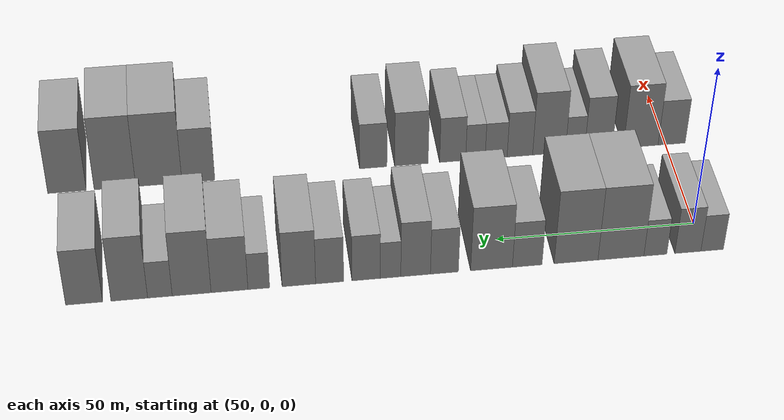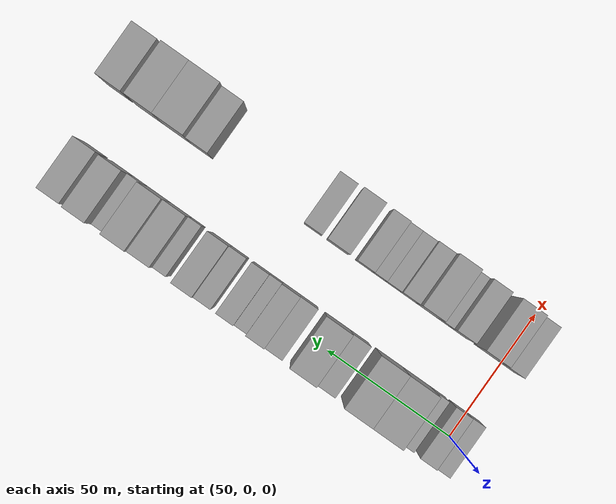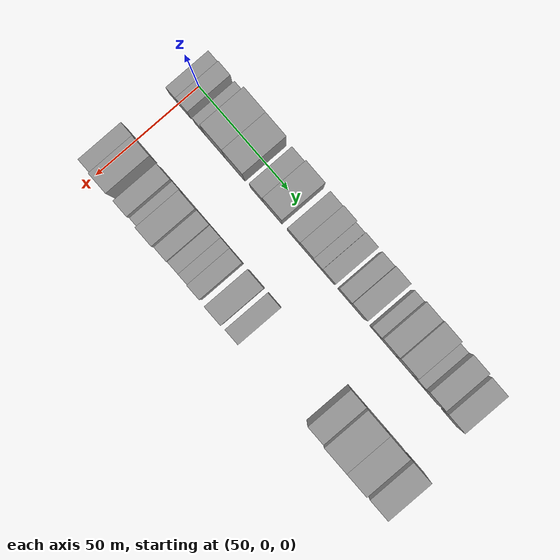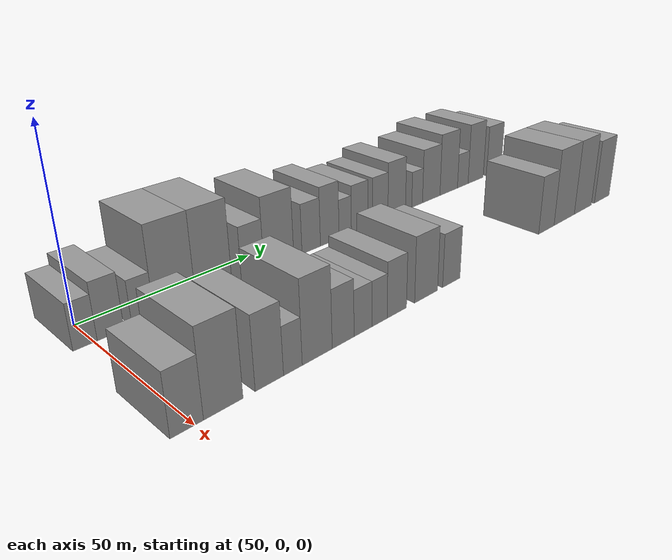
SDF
<sdf version="1.6">
 <world name="default">
  <model name="building_34">
   <static>1</static>
   <pose>50.0000 -2.1752 0 0.000000 0.000000 0.000000</pose>
   <link name="link">
    <pose>0 0 6.00 0 0 0</pose>
    <collision name="collision"><geometry><box><size>20.0000 5.7027 12.0000</size></box></geometry></collision>
    <visual name="visual">
     <cast_shadows>0</cast_shadows>
     <geometry><box><size>20.0000 5.7027 12.0000</size></box></geometry>
     <material>
      <script>
       <uri>model://grey_wall/materials/scripts</uri>
       <uri>model://grey_wall/materials/textures</uri>
       <name>vrc/grey_wall</name>
      </script>
     </material>
    </visual>
   </link>
  </model>
  <model name="building_35">
   <static>1</static>
   <pose>50.0000 3.9535 0 0.000000 0.000000 0.000000</pose>
   <link name="link">
    <pose>0 0 7.50 0 0 0</pose>
    <collision name="collision"><geometry><box><size>20.0000 6.5547 15.0000</size></box></geometry></collision>
    <visual name="visual">
     <cast_shadows>0</cast_shadows>
     <geometry><box><size>20.0000 6.5547 15.0000</size></box></geometry>
     <material>
      <script>
       <uri>model://grey_wall/materials/scripts</uri>
       <uri>model://grey_wall/materials/textures</uri>
       <name>vrc/grey_wall</name>
      </script>
     </material>
    </visual>
   </link>
  </model>
  <model name="building_36">
   <static>1</static>
   <pose>50.0000 12.1272 0 0.000000 0.000000 0.000000</pose>
   <link name="link">
    <pose>0 0 6.00 0 0 0</pose>
    <collision name="collision"><geometry><box><size>20.0000 5.7927 12.0000</size></box></geometry></collision>
    <visual name="visual">
     <cast_shadows>0</cast_shadows>
     <geometry><box><size>20.0000 5.7927 12.0000</size></box></geometry>
     <material>
      <script>
       <uri>model://grey_wall/materials/scripts</uri>
       <uri>model://grey_wall/materials/textures</uri>
       <name>vrc/grey_wall</name>
      </script>
     </material>
    </visual>
   </link>
  </model>
  <model name="building_37">
   <static>1</static>
   <pose>50.0000 20.7689 0 0.000000 0.000000 0.000000</pose>
   <link name="link">
    <pose>0 0 12.00 0 0 0</pose>
    <collision name="collision"><geometry><box><size>20.0000 11.4906 24.0000</size></box></geometry></collision>
    <visual name="visual">
     <cast_shadows>0</cast_shadows>
     <geometry><box><size>20.0000 11.4906 24.0000</size></box></geometry>
     <material>
      <script>
       <uri>model://grey_wall/materials/scripts</uri>
       <uri>model://grey_wall/materials/textures</uri>
       <name>vrc/grey_wall</name>
      </script>
     </material>
    </visual>
   </link>
  </model>
  <model name="building_38">
   <static>1</static>
   <pose>50.0000 31.9751 0 0.000000 0.000000 0.000000</pose>
   <link name="link">
    <pose>0 0 12.00 0 0 0</pose>
    <collision name="collision"><geometry><box><size>20.0000 10.9218 24.0000</size></box></geometry></collision>
    <visual name="visual">
     <cast_shadows>0</cast_shadows>
     <geometry><box><size>20.0000 10.9218 24.0000</size></box></geometry>
     <material>
      <script>
       <uri>model://grey_wall/materials/scripts</uri>
       <uri>model://grey_wall/materials/textures</uri>
       <name>vrc/grey_wall</name>
      </script>
     </material>
    </visual>
   </link>
  </model>
  <model name="building_39">
   <static>1</static>
   <pose>50.0000 44.1195 0 0.000000 0.000000 0.000000</pose>
   <link name="link">
    <pose>0 0 7.50 0 0 0</pose>
    <collision name="collision"><geometry><box><size>20.0000 7.3670 15.0000</size></box></geometry></collision>
    <visual name="visual">
     <cast_shadows>0</cast_shadows>
     <geometry><box><size>20.0000 7.3670 15.0000</size></box></geometry>
     <material>
      <script>
       <uri>model://grey_wall/materials/scripts</uri>
       <uri>model://grey_wall/materials/textures</uri>
       <name>vrc/grey_wall</name>
      </script>
     </material>
    </visual>
   </link>
  </model>
  <model name="building_40">
   <static>1</static>
   <pose>50.0000 52.9714 0 0.000000 0.000000 0.000000</pose>
   <link name="link">
    <pose>0 0 10.50 0 0 0</pose>
    <collision name="collision"><geometry><box><size>20.0000 10.3369 21.0000</size></box></geometry></collision>
    <visual name="visual">
     <cast_shadows>0</cast_shadows>
     <geometry><box><size>20.0000 10.3369 21.0000</size></box></geometry>
     <material>
      <script>
       <uri>model://grey_wall/materials/scripts</uri>
       <uri>model://grey_wall/materials/textures</uri>
       <name>vrc/grey_wall</name>
      </script>
     </material>
    </visual>
   </link>
  </model>
  <model name="building_41">
   <static>1</static>
   <pose>50.0000 64.5912 0 0.000000 0.000000 0.000000</pose>
   <link name="link">
    <pose>0 0 7.50 0 0 0</pose>
    <collision name="collision"><geometry><box><size>20.0000 6.9026 15.0000</size></box></geometry></collision>
    <visual name="visual">
     <cast_shadows>0</cast_shadows>
     <geometry><box><size>20.0000 6.9026 15.0000</size></box></geometry>
     <material>
      <script>
       <uri>model://grey_wall/materials/scripts</uri>
       <uri>model://grey_wall/materials/textures</uri>
       <name>vrc/grey_wall</name>
      </script>
     </material>
    </visual>
   </link>
  </model>
  <model name="building_42">
   <static>1</static>
   <pose>50.0000 71.6783 0 0.000000 0.000000 0.000000</pose>
   <link name="link">
    <pose>0 0 9.00 0 0 0</pose>
    <collision name="collision"><geometry><box><size>20.0000 7.2717 18.0000</size></box></geometry></collision>
    <visual name="visual">
     <cast_shadows>0</cast_shadows>
     <geometry><box><size>20.0000 7.2717 18.0000</size></box></geometry>
     <material>
      <script>
       <uri>model://grey_wall/materials/scripts</uri>
       <uri>model://grey_wall/materials/textures</uri>
       <name>vrc/grey_wall</name>
      </script>
     </material>
    </visual>
   </link>
  </model>
  <model name="building_43">
   <static>1</static>
   <pose>50.0000 77.8139 0 0.000000 0.000000 0.000000</pose>
   <link name="link">
    <pose>0 0 6.00 0 0 0</pose>
    <collision name="collision"><geometry><box><size>20.0000 4.9995 12.0000</size></box></geometry></collision>
    <visual name="visual">
     <cast_shadows>0</cast_shadows>
     <geometry><box><size>20.0000 4.9995 12.0000</size></box></geometry>
     <material>
      <script>
       <uri>model://grey_wall/materials/scripts</uri>
       <uri>model://grey_wall/materials/textures</uri>
       <name>vrc/grey_wall</name>
      </script>
     </material>
    </visual>
   </link>
  </model>
  <model name="building_44">
   <static>1</static>
   <pose>50.0000 83.7802 0 0.000000 0.000000 0.000000</pose>
   <link name="link">
    <pose>0 0 7.50 0 0 0</pose>
    <collision name="collision"><geometry><box><size>20.0000 6.9331 15.0000</size></box></geometry></collision>
    <visual name="visual">
     <cast_shadows>0</cast_shadows>
     <geometry><box><size>20.0000 6.9331 15.0000</size></box></geometry>
     <material>
      <script>
       <uri>model://grey_wall/materials/scripts</uri>
       <uri>model://grey_wall/materials/textures</uri>
       <name>vrc/grey_wall</name>
      </script>
     </material>
    </visual>
   </link>
  </model>
  <model name="building_45">
   <static>1</static>
   <pose>50.0000 92.6719 0 0.000000 0.000000 0.000000</pose>
   <link name="link">
    <pose>0 0 7.50 0 0 0</pose>
    <collision name="collision"><geometry><box><size>20.0000 6.8504 15.0000</size></box></geometry></collision>
    <visual name="visual">
     <cast_shadows>0</cast_shadows>
     <geometry><box><size>20.0000 6.8504 15.0000</size></box></geometry>
     <material>
      <script>
       <uri>model://grey_wall/materials/scripts</uri>
       <uri>model://grey_wall/materials/textures</uri>
       <name>vrc/grey_wall</name>
      </script>
     </material>
    </visual>
   </link>
  </model>
  <model name="building_46">
   <static>1</static>
   <pose>50.0000 100.1670 0 0.000000 0.000000 0.000000</pose>
   <link name="link">
    <pose>0 0 9.00 0 0 0</pose>
    <collision name="collision"><geometry><box><size>20.0000 8.1397 18.0000</size></box></geometry></collision>
    <visual name="visual">
     <cast_shadows>0</cast_shadows>
     <geometry><box><size>20.0000 8.1397 18.0000</size></box></geometry>
     <material>
      <script>
       <uri>model://grey_wall/materials/scripts</uri>
       <uri>model://grey_wall/materials/textures</uri>
       <name>vrc/grey_wall</name>
      </script>
     </material>
    </visual>
   </link>
  </model>
  <model name="building_47">
   <static>1</static>
   <pose>50.0000 109.8705 0 0.000000 0.000000 0.000000</pose>
   <link name="link">
    <pose>0 0 6.00 0 0 0</pose>
    <collision name="collision"><geometry><box><size>20.0000 5.2673 12.0000</size></box></geometry></collision>
    <visual name="visual">
     <cast_shadows>0</cast_shadows>
     <geometry><box><size>20.0000 5.2673 12.0000</size></box></geometry>
     <material>
      <script>
       <uri>model://grey_wall/materials/scripts</uri>
       <uri>model://grey_wall/materials/textures</uri>
       <name>vrc/grey_wall</name>
      </script>
     </material>
    </visual>
   </link>
  </model>
  <model name="building_48">
   <static>1</static>
   <pose>50.0000 116.9437 0 0.000000 0.000000 0.000000</pose>
   <link name="link">
    <pose>0 0 9.00 0 0 0</pose>
    <collision name="collision"><geometry><box><size>20.0000 8.8791 18.0000</size></box></geometry></collision>
    <visual name="visual">
     <cast_shadows>0</cast_shadows>
     <geometry><box><size>20.0000 8.8791 18.0000</size></box></geometry>
     <material>
      <script>
       <uri>model://grey_wall/materials/scripts</uri>
       <uri>model://grey_wall/materials/textures</uri>
       <name>vrc/grey_wall</name>
      </script>
     </material>
    </visual>
   </link>
  </model>
  <model name="building_49">
   <static>1</static>
   <pose>50.0000 126.0535 0 0.000000 0.000000 0.000000</pose>
   <link name="link">
    <pose>0 0 10.50 0 0 0</pose>
    <collision name="collision"><geometry><box><size>20.0000 9.3406 21.0000</size></box></geometry></collision>
    <visual name="visual">
     <cast_shadows>0</cast_shadows>
     <geometry><box><size>20.0000 9.3406 21.0000</size></box></geometry>
     <material>
      <script>
       <uri>model://grey_wall/materials/scripts</uri>
       <uri>model://grey_wall/materials/textures</uri>
       <name>vrc/grey_wall</name>
      </script>
     </material>
    </visual>
   </link>
  </model>
  <model name="building_50">
   <static>1</static>
   <pose>50.0000 133.6746 0 0.000000 0.000000 0.000000</pose>
   <link name="link">
    <pose>0 0 6.00 0 0 0</pose>
    <collision name="collision"><geometry><box><size>20.0000 5.9016 12.0000</size></box></geometry></collision>
    <visual name="visual">
     <cast_shadows>0</cast_shadows>
     <geometry><box><size>20.0000 5.9016 12.0000</size></box></geometry>
     <material>
      <script>
       <uri>model://grey_wall/materials/scripts</uri>
       <uri>model://grey_wall/materials/textures</uri>
       <name>vrc/grey_wall</name>
      </script>
     </material>
    </visual>
   </link>
  </model>
  <model name="building_51">
   <static>1</static>
   <pose>50.0000 140.9963 0 0.000000 0.000000 0.000000</pose>
   <link name="link">
    <pose>0 0 10.50 0 0 0</pose>
    <collision name="collision"><geometry><box><size>20.0000 8.7419 21.0000</size></box></geometry></collision>
    <visual name="visual">
     <cast_shadows>0</cast_shadows>
     <geometry><box><size>20.0000 8.7419 21.0000</size></box></geometry>
     <material>
      <script>
       <uri>model://grey_wall/materials/scripts</uri>
       <uri>model://grey_wall/materials/textures</uri>
       <name>vrc/grey_wall</name>
      </script>
     </material>
    </visual>
   </link>
  </model>
  <model name="building_52">
   <static>1</static>
   <pose>50.0000 151.7651 0 0.000000 0.000000 0.000000</pose>
   <link name="link">
    <pose>0 0 9.00 0 0 0</pose>
    <collision name="collision"><geometry><box><size>20.0000 8.7956 18.0000</size></box></geometry></collision>
    <visual name="visual">
     <cast_shadows>0</cast_shadows>
     <geometry><box><size>20.0000 8.7956 18.0000</size></box></geometry>
     <material>
      <script>
       <uri>model://grey_wall/materials/scripts</uri>
       <uri>model://grey_wall/materials/textures</uri>
       <name>vrc/grey_wall</name>
      </script>
     </material>
    </visual>
   </link>
  </model>
  <model name="building_104">
   <static>1</static>
   <pose>90.0000 -1.6800 0 0.000000 0.000000 0.000000</pose>
   <link name="link">
    <pose>0 0 7.50 0 0 0</pose>
    <collision name="collision"><geometry><box><size>20.0000 7.3227 15.0000</size></box></geometry></collision>
    <visual name="visual">
     <cast_shadows>0</cast_shadows>
     <geometry><box><size>20.0000 7.3227 15.0000</size></box></geometry>
     <material>
      <script>
       <uri>model://grey_wall/materials/scripts</uri>
       <uri>model://grey_wall/materials/textures</uri>
       <name>vrc/grey_wall</name>
      </script>
     </material>
    </visual>
   </link>
  </model>
  <model name="building_105">
   <static>1</static>
   <pose>90.0000 6.6224 0 0.000000 0.000000 0.000000</pose>
   <link name="link">
    <pose>0 0 10.50 0 0 0</pose>
    <collision name="collision"><geometry><box><size>20.0000 9.2821 21.0000</size></box></geometry></collision>
    <visual name="visual">
     <cast_shadows>0</cast_shadows>
     <geometry><box><size>20.0000 9.2821 21.0000</size></box></geometry>
     <material>
      <script>
       <uri>model://grey_wall/materials/scripts</uri>
       <uri>model://grey_wall/materials/textures</uri>
       <name>vrc/grey_wall</name>
      </script>
     </material>
    </visual>
   </link>
  </model>
  <model name="building_106">
   <static>1</static>
   <pose>90.0000 17.9447 0 0.000000 0.000000 0.000000</pose>
   <link name="link">
    <pose>0 0 9.00 0 0 0</pose>
    <collision name="collision"><geometry><box><size>20.0000 7.3625 18.0000</size></box></geometry></collision>
    <visual name="visual">
     <cast_shadows>0</cast_shadows>
     <geometry><box><size>20.0000 7.3625 18.0000</size></box></geometry>
     <material>
      <script>
       <uri>model://grey_wall/materials/scripts</uri>
       <uri>model://grey_wall/materials/textures</uri>
       <name>vrc/grey_wall</name>
      </script>
     </material>
    </visual>
   </link>
  </model>
  <model name="building_107">
   <static>1</static>
   <pose>90.0000 24.1893 0 0.000000 0.000000 0.000000</pose>
   <link name="link">
    <pose>0 0 6.00 0 0 0</pose>
    <collision name="collision"><geometry><box><size>20.0000 5.1267 12.0000</size></box></geometry></collision>
    <visual name="visual">
     <cast_shadows>0</cast_shadows>
     <geometry><box><size>20.0000 5.1267 12.0000</size></box></geometry>
     <material>
      <script>
       <uri>model://grey_wall/materials/scripts</uri>
       <uri>model://grey_wall/materials/textures</uri>
       <name>vrc/grey_wall</name>
      </script>
     </material>
    </visual>
   </link>
  </model>
  <model name="building_108">
   <static>1</static>
   <pose>90.0000 31.0995 0 0.000000 0.000000 0.000000</pose>
   <link name="link">
    <pose>0 0 10.50 0 0 0</pose>
    <collision name="collision"><geometry><box><size>20.0000 8.6936 21.0000</size></box></geometry></collision>
    <visual name="visual">
     <cast_shadows>0</cast_shadows>
     <geometry><box><size>20.0000 8.6936 21.0000</size></box></geometry>
     <material>
      <script>
       <uri>model://grey_wall/materials/scripts</uri>
       <uri>model://grey_wall/materials/textures</uri>
       <name>vrc/grey_wall</name>
      </script>
     </material>
    </visual>
   </link>
  </model>
  <model name="building_109">
   <static>1</static>
   <pose>90.0000 38.8244 0 0.000000 0.000000 0.000000</pose>
   <link name="link">
    <pose>0 0 7.50 0 0 0</pose>
    <collision name="collision"><geometry><box><size>20.0000 6.7562 15.0000</size></box></geometry></collision>
    <visual name="visual">
     <cast_shadows>0</cast_shadows>
     <geometry><box><size>20.0000 6.7562 15.0000</size></box></geometry>
     <material>
      <script>
       <uri>model://grey_wall/materials/scripts</uri>
       <uri>model://grey_wall/materials/textures</uri>
       <name>vrc/grey_wall</name>
      </script>
     </material>
    </visual>
   </link>
  </model>
  <model name="building_110">
   <static>1</static>
   <pose>90.0000 45.1124 0 0.000000 0.000000 0.000000</pose>
   <link name="link">
    <pose>0 0 6.00 0 0 0</pose>
    <collision name="collision"><geometry><box><size>20.0000 5.8198 12.0000</size></box></geometry></collision>
    <visual name="visual">
     <cast_shadows>0</cast_shadows>
     <geometry><box><size>20.0000 5.8198 12.0000</size></box></geometry>
     <material>
      <script>
       <uri>model://grey_wall/materials/scripts</uri>
       <uri>model://grey_wall/materials/textures</uri>
       <name>vrc/grey_wall</name>
      </script>
     </material>
    </visual>
   </link>
  </model>
  <model name="building_111">
   <static>1</static>
   <pose>90.0000 50.5832 0 0.000000 0.000000 0.000000</pose>
   <link name="link">
    <pose>0 0 6.00 0 0 0</pose>
    <collision name="collision"><geometry><box><size>20.0000 5.1218 12.0000</size></box></geometry></collision>
    <visual name="visual">
     <cast_shadows>0</cast_shadows>
     <geometry><box><size>20.0000 5.1218 12.0000</size></box></geometry>
     <material>
      <script>
       <uri>model://grey_wall/materials/scripts</uri>
       <uri>model://grey_wall/materials/textures</uri>
       <name>vrc/grey_wall</name>
      </script>
     </material>
    </visual>
   </link>
  </model>
  <model name="building_112">
   <static>1</static>
   <pose>90.0000 56.5675 0 0.000000 0.000000 0.000000</pose>
   <link name="link">
    <pose>0 0 7.50 0 0 0</pose>
    <collision name="collision"><geometry><box><size>20.0000 6.8467 15.0000</size></box></geometry></collision>
    <visual name="visual">
     <cast_shadows>0</cast_shadows>
     <geometry><box><size>20.0000 6.8467 15.0000</size></box></geometry>
     <material>
      <script>
       <uri>model://grey_wall/materials/scripts</uri>
       <uri>model://grey_wall/materials/textures</uri>
       <name>vrc/grey_wall</name>
      </script>
     </material>
    </visual>
   </link>
  </model>
  <model name="building_113">
   <static>1</static>
   <pose>90.0000 67.3878 0 0.000000 0.000000 0.000000</pose>
   <link name="link">
    <pose>0 0 9.00 0 0 0</pose>
    <collision name="collision"><geometry><box><size>20.0000 8.7938 18.0000</size></box></geometry></collision>
    <visual name="visual">
     <cast_shadows>0</cast_shadows>
     <geometry><box><size>20.0000 8.7938 18.0000</size></box></geometry>
     <material>
      <script>
       <uri>model://grey_wall/materials/scripts</uri>
       <uri>model://grey_wall/materials/textures</uri>
       <name>vrc/grey_wall</name>
      </script>
     </material>
    </visual>
   </link>
  </model>
  <model name="building_114">
   <static>1</static>
   <pose>90.0000 77.3530 0 0.000000 0.000000 0.000000</pose>
   <link name="link">
    <pose>0 0 7.50 0 0 0</pose>
    <collision name="collision"><geometry><box><size>20.0000 7.1366 15.0000</size></box></geometry></collision>
    <visual name="visual">
     <cast_shadows>0</cast_shadows>
     <geometry><box><size>20.0000 7.1366 15.0000</size></box></geometry>
     <material>
      <script>
       <uri>model://grey_wall/materials/scripts</uri>
       <uri>model://grey_wall/materials/textures</uri>
       <name>vrc/grey_wall</name>
      </script>
     </material>
    </visual>
   </link>
  </model>
  <model name="building_115">
   <static>1</static>
   <pose>90.0000 122.6026 0 0.000000 0.000000 0.000000</pose>
   <link name="link">
    <pose>0 0 9.00 0 0 0</pose>
    <collision name="collision"><geometry><box><size>20.0000 8.4542 18.0000</size></box></geometry></collision>
    <visual name="visual">
     <cast_shadows>0</cast_shadows>
     <geometry><box><size>20.0000 8.4542 18.0000</size></box></geometry>
     <material>
      <script>
       <uri>model://grey_wall/materials/scripts</uri>
       <uri>model://grey_wall/materials/textures</uri>
       <name>vrc/grey_wall</name>
      </script>
     </material>
    </visual>
   </link>
  </model>
  <model name="building_116">
   <static>1</static>
   <pose>90.0000 132.7467 0 0.000000 0.000000 0.000000</pose>
   <link name="link">
    <pose>0 0 12.00 0 0 0</pose>
    <collision name="collision"><geometry><box><size>20.0000 11.8341 24.0000</size></box></geometry></collision>
    <visual name="visual">
     <cast_shadows>0</cast_shadows>
     <geometry><box><size>20.0000 11.8341 24.0000</size></box></geometry>
     <material>
      <script>
       <uri>model://grey_wall/materials/scripts</uri>
       <uri>model://grey_wall/materials/textures</uri>
       <name>vrc/grey_wall</name>
      </script>
     </material>
    </visual>
   </link>
  </model>
  <model name="building_117">
   <static>1</static>
   <pose>90.0000 143.9560 0 0.000000 0.000000 0.000000</pose>
   <link name="link">
    <pose>0 0 12.00 0 0 0</pose>
    <collision name="collision"><geometry><box><size>20.0000 10.5844 24.0000</size></box></geometry></collision>
    <visual name="visual">
     <cast_shadows>0</cast_shadows>
     <geometry><box><size>20.0000 10.5844 24.0000</size></box></geometry>
     <material>
      <script>
       <uri>model://grey_wall/materials/scripts</uri>
       <uri>model://grey_wall/materials/textures</uri>
       <name>vrc/grey_wall</name>
      </script>
     </material>
    </visual>
   </link>
  </model>
  <model name="building_118">
   <static>1</static>
   <pose>90.0000 156.1305 0 0.000000 0.000000 0.000000</pose>
   <link name="link">
    <pose>0 0 10.50 0 0 0</pose>
    <collision name="collision"><geometry><box><size>20.0000 9.7646 21.0000</size></box></geometry></collision>
    <visual name="visual">
     <cast_shadows>0</cast_shadows>
     <geometry><box><size>20.0000 9.7646 21.0000</size></box></geometry>
     <material>
      <script>
       <uri>model://grey_wall/materials/scripts</uri>
       <uri>model://grey_wall/materials/textures</uri>
       <name>vrc/grey_wall</name>
      </script>
     </material>
    </visual>
   </link>
  </model>
 </world>
</sdf>
